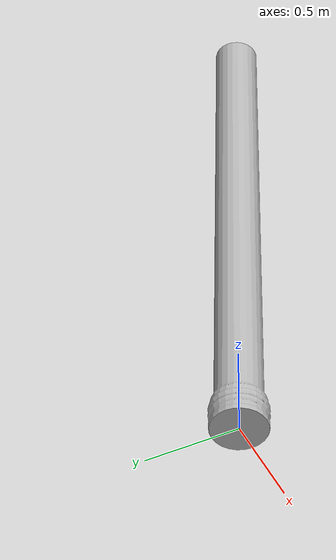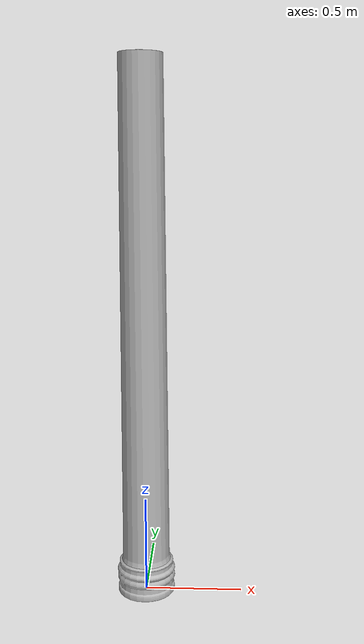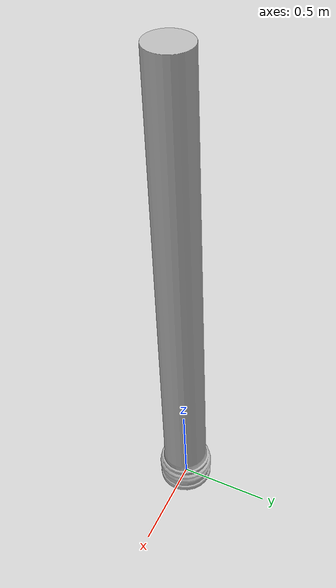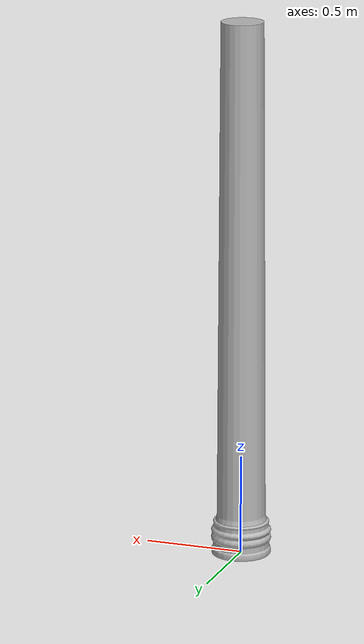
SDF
<?xml version='1.0'?>
<sdf version='1.4'>
  <model name='366'>
    <pose>0 0 0 0 0 0</pose>
    <static>true</static>
    <link name='link'>
      <collision name='collision'>
        <pose>0 0 0 0 0 0</pose>
        <geometry>
          <box>
            <size>0.3 0.3 2</size>
          </box>
        </geometry>
      </collision>
      <visual name='visual'>
        <pose>0 0 0 0 0 0</pose>
        <geometry>
          <mesh><uri>model://366/366.dae</uri></mesh>
        </geometry>
      </visual>
    </link>
  </model>
</sdf>
